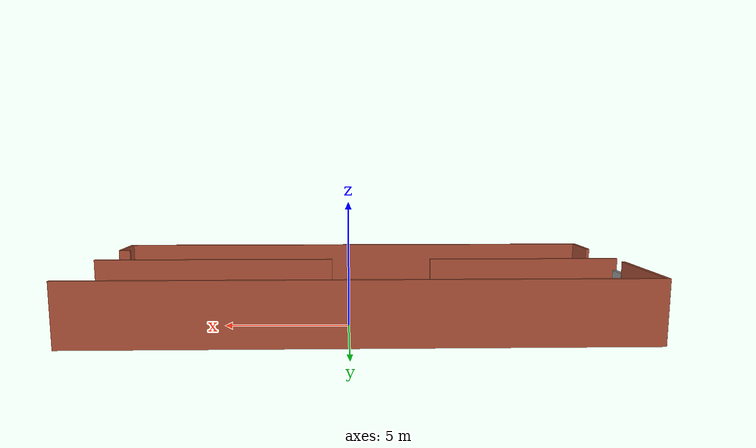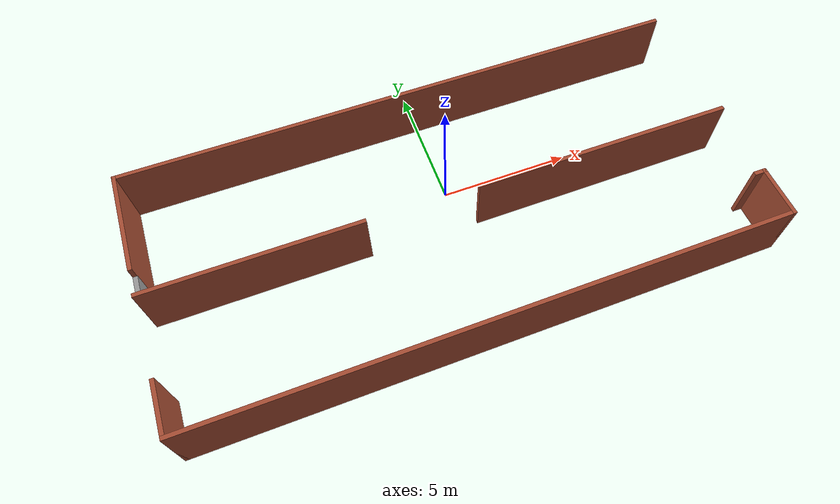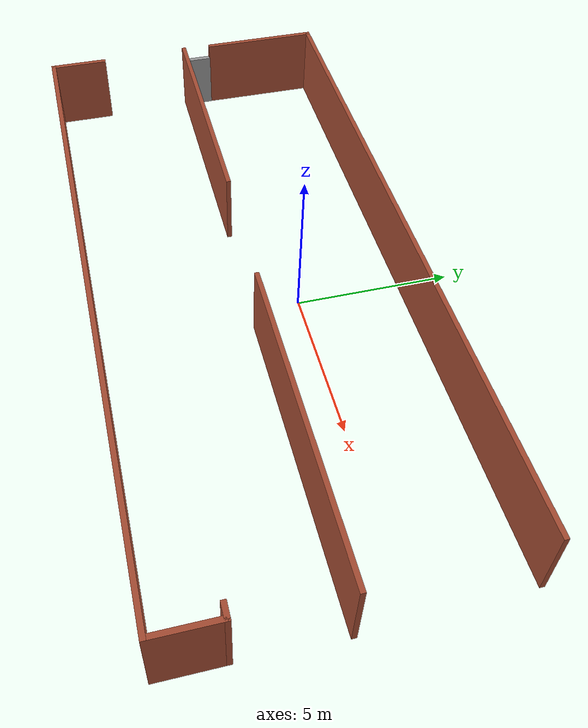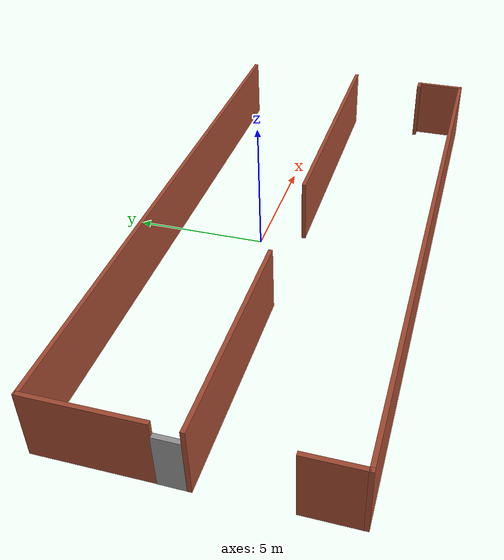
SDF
<?xml version='1.0'?>
<sdf version='1.6'>
  <model name='Almacen_RobotPallet_SIN_PUERTA'>
    <pose frame=''>-0.393239 -1.50937 0 0 -0 0</pose>
    <link name='Door_0'>
      <collision name='Door_0_Collision'>
        <geometry>
          <box>
            <size>0.9 0.17 2</size>
          </box>
        </geometry>
        <pose frame=''>0 0 1 0 -0 0</pose>
      </collision>
      <visual name='Door_0_Visual'>
        <pose frame=''>0 0 1 0 -0 0</pose>
        <geometry>
          <box>
            <size>0.9 0.17 2</size>
          </box>
        </geometry>
        <material>
          <script>
            <uri>file://media/materials/scripts/gazebo.material</uri>
            <name>Gazebo/Grey</name>
          </script>
        </material>
      </visual>
      <pose frame=''>-10.9928 0.560426 0 0 -0 1.56688</pose>
    </link>
    <link name='Wall_1'>
      <collision name='Wall_1_Collision'>
        <geometry>
          <box>
            <size>22 0.15 2.5</size>
          </box>
        </geometry>
        <pose frame=''>0 0 1.25 0 -0 0</pose>
      </collision>
      <visual name='Wall_1_Visual'>
        <pose frame=''>0 0 1.25 0 -0 0</pose>
        <geometry>
          <box>
            <size>22 0.15 2.5</size>
          </box>
        </geometry>
        <material>
          <script>
            <uri>file://media/materials/scripts/gazebo.material</uri>
            <name>Gazebo/Bricks</name>
          </script>
          <ambient>1 1 1 1</ambient>
        </material>
        <meta>
          <layer>0</layer>
        </meta>
      </visual>
      <pose frame=''>0.006161 -4.91576 0 0 -0 0</pose>
    </link>
    <link name='Wall_11'>
      <collision name='Wall_11_Collision'>
        <geometry>
          <box>
            <size>10 0.15 2.5</size>
          </box>
        </geometry>
        <pose frame=''>0 0 1.25 0 -0 0</pose>
      </collision>
      <visual name='Wall_11_Visual'>
        <pose frame=''>0 0 1.25 0 -0 0</pose>
        <geometry>
          <box>
            <size>10 0.15 2.5</size>
          </box>
        </geometry>
        <material>
          <script>
            <uri>file://media/materials/scripts/gazebo.material</uri>
            <name>Gazebo/Bricks</name>
          </script>
          <ambient>1 1 1 1</ambient>
        </material>
        <meta>
          <layer>0</layer>
        </meta>
      </visual>
      <pose frame=''>6.08129 -0.036029 0 0 -0 3.14159</pose>
    </link>
    <link name='Wall_13'>
      <collision name='Wall_13_Collision'>
        <geometry>
          <box>
            <size>22 0.15 2.5</size>
          </box>
        </geometry>
        <pose frame=''>0 0 1.25 0 -0 0</pose>
      </collision>
      <visual name='Wall_13_Visual'>
        <pose frame=''>0 0 1.25 0 -0 0</pose>
        <geometry>
          <box>
            <size>22 0.15 2.5</size>
          </box>
        </geometry>
        <material>
          <script>
            <uri>file://media/materials/scripts/gazebo.material</uri>
            <name>Gazebo/Bricks</name>
          </script>
          <ambient>1 1 1 1</ambient>
        </material>
        <meta>
          <layer>0</layer>
        </meta>
      </visual>
      <pose frame=''>-0.063767 4.91576 0 0 -0 3.14159</pose>
    </link>
    <link name='Wall_17'>
      <collision name='Wall_17_Collision'>
        <geometry>
          <box>
            <size>8 0.15 2.5</size>
          </box>
        </geometry>
        <pose frame=''>0 0 1.25 0 -0 0</pose>
      </collision>
      <visual name='Wall_17_Visual'>
        <pose frame=''>0 0 1.25 0 -0 0</pose>
        <geometry>
          <box>
            <size>8 0.15 2.5</size>
          </box>
        </geometry>
        <material>
          <script>
            <uri>file://media/materials/scripts/gazebo.material</uri>
            <name>Gazebo/Bricks</name>
          </script>
          <ambient>1 1 1 1</ambient>
        </material>
        <meta>
          <layer>0</layer>
        </meta>
      </visual>
      <pose frame=''>-7.08129 0.033931 0 0 -0 0</pose>
    </link>
    <link name='Wall_20'>
      <collision name='Wall_20_Collision'>
        <geometry>
          <box>
            <size>4 0.15 2.5</size>
          </box>
        </geometry>
        <pose frame=''>0 0 1.25 0 -0 0</pose>
      </collision>
      <visual name='Wall_20_Visual'>
        <pose frame=''>0 0 1.25 0 -0 0</pose>
        <geometry>
          <box>
            <size>4 0.15 2.5</size>
          </box>
        </geometry>
        <material>
          <script>
            <uri>file://media/materials/scripts/gazebo.material</uri>
            <name>Gazebo/Bricks</name>
          </script>
          <ambient>1 1 1 1</ambient>
        </material>
        <meta>
          <layer>0</layer>
        </meta>
      </visual>
      <pose frame=''>-10.9937 2.99076 0 0 -0 -1.5708</pose>
    </link>
    <link name='Wall_29'>
      <collision name='Wall_29_Collision'>
        <geometry>
          <box>
            <size>0.5 0.15 2.5</size>
          </box>
        </geometry>
        <pose frame=''>0 0 1.25 0 -0 0</pose>
      </collision>
      <visual name='Wall_29_Visual'>
        <pose frame=''>0 0 1.25 0 -0 0</pose>
        <geometry>
          <box>
            <size>0.5 0.15 2.5</size>
          </box>
        </geometry>
        <material>
          <script>
            <uri>file://media/materials/scripts/gazebo.material</uri>
            <name>Gazebo/Bricks</name>
          </script>
          <ambient>1 1 1 1</ambient>
        </material>
        <meta>
          <layer>0</layer>
        </meta>
      </visual>
      <pose frame=''>10.7562 -3.06576 0 0 -0 3.14159</pose>
    </link>
    <link name='Wall_3'>
      <collision name='Wall_3_Collision'>
        <geometry>
          <box>
            <size>2 0.15 2.5</size>
          </box>
        </geometry>
        <pose frame=''>0 0 1.25 0 -0 0</pose>
      </collision>
      <visual name='Wall_3_Visual'>
        <pose frame=''>0 0 1.25 0 -0 0</pose>
        <geometry>
          <box>
            <size>2 0.15 2.5</size>
          </box>
        </geometry>
        <material>
          <script>
            <uri>file://media/materials/scripts/gazebo.material</uri>
            <name>Gazebo/Bricks</name>
          </script>
          <ambient>1 1 1 1</ambient>
        </material>
        <meta>
          <layer>0</layer>
        </meta>
      </visual>
      <pose frame=''>10.9312 -3.99076 0 0 -0 1.5708</pose>
    </link>
    <link name='Wall_5'>
      <collision name='Wall_5_Collision'>
        <geometry>
          <box>
            <size>2 0.15 2.5</size>
          </box>
        </geometry>
        <pose frame=''>0 0 1.25 0 -0 0</pose>
      </collision>
      <visual name='Wall_5_Visual'>
        <pose frame=''>0 0 1.25 0 -0 0</pose>
        <geometry>
          <box>
            <size>2 0.15 2.5</size>
          </box>
        </geometry>
        <material>
          <script>
            <uri>file://media/materials/scripts/gazebo.material</uri>
            <name>Gazebo/Bricks</name>
          </script>
          <ambient>1 1 1 1</ambient>
        </material>
        <meta>
          <layer>0</layer>
        </meta>
      </visual>
      <pose frame=''>-10.9188 -3.99076 0 0 -0 1.5708</pose>
    </link>
    <static>1</static>
  </model>
</sdf>
